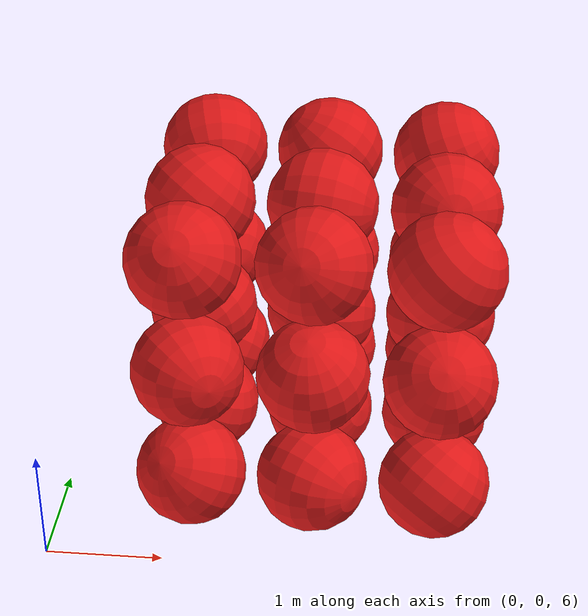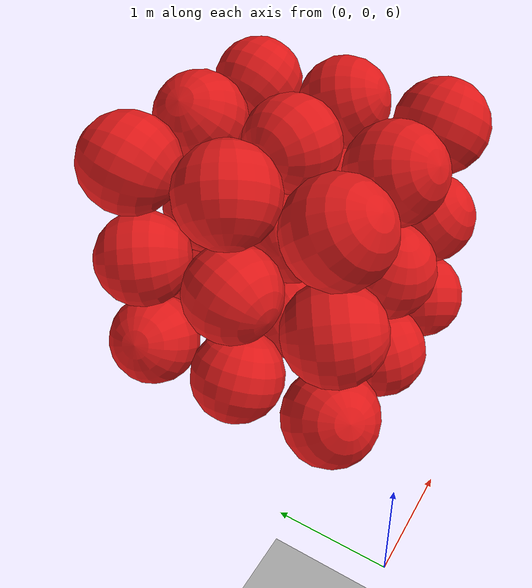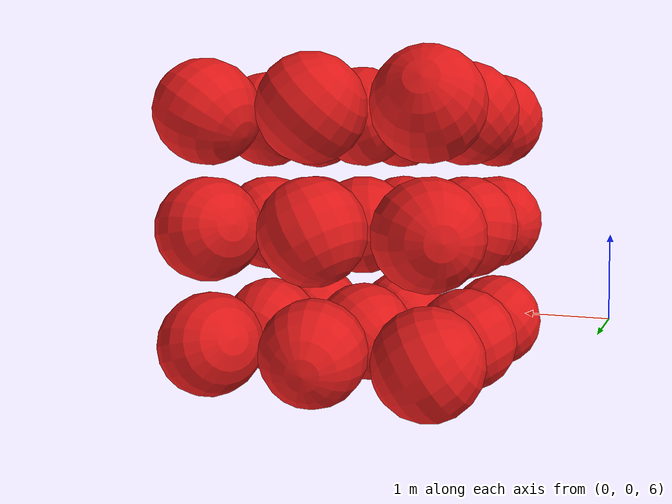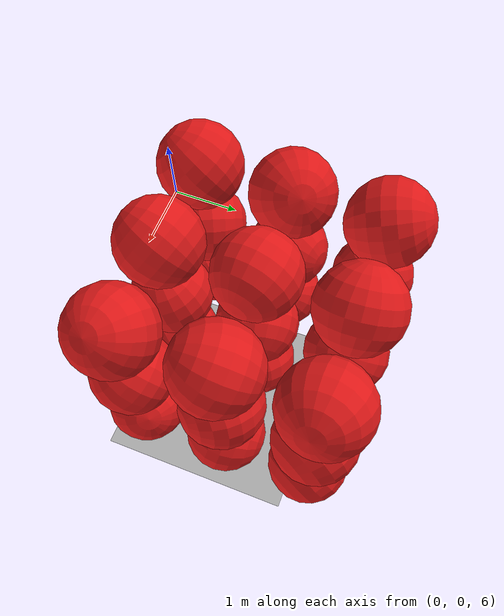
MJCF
<mujoco model="Humanoid and 100 objects">
    <compiler angle="degree"/>

    <option timestep="0.01" iterations="50" solver="PGS" jacobian="sparse" cone="elliptic" tolerance="1e-10"/>

    <size njmax="5000" nconmax="2000" nstack="1000000000"/>

    <default>
        <geom solimp=".9 .9 .01"/>

        <default class="object5">
			<geom type="sphere" material="geom" rgba=".9 .1 .1 1" size="0.500000"/>
        </default>
    </default>

    <asset>
        <texture type="skybox" builtin="gradient" width="128" height="128" rgb1=".4 .6 .8" rgb2="0 0 0"/>
        <texture name="texgeom" type="cube" builtin="flat" mark="cross" width="128" height="128"
            rgb1="0.6 0.6 0.6" rgb2="0.6 0.6 0.6" markrgb="1 1 1"/>
        <texture name="texplane" type="2d" builtin="checker" rgb1=".4 .4 .4" rgb2=".6 .6 .6"
            width="512" height="512"/>
        <material name='geom' texture="texgeom" texuniform="true"/>
        <material name='MatPlane' reflectance='0.3' texture="texplane" texrepeat="1 1" texuniform="true"/>
    </asset>

    <visual>
        <quality shadowsize="4096" offsamples="8"/>
        <map znear="0.1" force="0.05"/>
    </visual>

    <statistic extent="4"/>

    <worldbody>
        <light directional="true" diffuse=".8 .8 .8" pos="0 0 10" dir="0 0 -10"/>

        <geom pos="0 0 0" type="plane" size="3 3 .5" rgba=".7 .7 .7 1" material="MatPlane"/>
		<body pos="1.100699 1.100891 6.100959" quat="0.084177 -0.644268 -0.625246 -0.432319"> <freejoint/> <geom class="object5"/> </body>
		<body pos="1.100841 1.100254 7.200814" quat="-0.424750 0.710906 -0.248443 -0.502470"> <freejoint/> <geom class="object5"/> </body>
		<body pos="1.100251 1.100616 8.300473" quat="-0.394776 0.880428 0.226912 0.132328"> <freejoint/> <geom class="object5"/> </body>
		<body pos="1.100917 2.200286 6.100757" quat="0.494597 -0.233048 0.132205 -0.826792"> <freejoint/> <geom class="object5"/> </body>
		<body pos="1.100054 2.200531 7.200779" quat="0.754364 -0.643269 0.119624 -0.053203"> <freejoint/> <geom class="object5"/> </body>
		<body pos="1.100012 2.200337 8.300162" quat="0.607259 -0.389560 0.058878 -0.689937"> <freejoint/> <geom class="object5"/> </body>
		<body pos="1.100602 3.300263 6.100654" quat="0.362116 0.474909 -0.094653 -0.796476"> <freejoint/> <geom class="object5"/> </body>
		<body pos="1.100229 3.300913 7.200152" quat="0.446823 0.052583 0.680395 -0.578487"> <freejoint/> <geom class="object5"/> </body>
		<body pos="1.100443 3.300107 8.300962" quat="-0.663395 0.368161 0.424933 0.493757"> <freejoint/> <geom class="object5"/> </body>
		<body pos="2.200084 1.100400 6.100260" quat="0.496951 -0.113587 0.680083 -0.526901"> <freejoint/> <geom class="object5"/> </body>
		<body pos="2.200264 1.100146 7.200136" quat="0.709034 0.153031 0.095731 -0.681680"> <freejoint/> <geom class="object5"/> </body>
		<body pos="2.200853 1.100622 8.300351" quat="0.026122 -0.193591 -0.836006 -0.512770"> <freejoint/> <geom class="object5"/> </body>
		<body pos="2.200123 2.200184 6.100240" quat="-0.109614 -0.596669 0.533564 0.589305"> <freejoint/> <geom class="object5"/> </body>
		<body pos="2.200491 2.200489 7.200338" quat="0.627198 -0.204993 -0.609550 0.439375"> <freejoint/> <geom class="object5"/> </body>
		<body pos="2.200390 2.200242 8.300404" quat="-0.481724 -0.439324 0.527689 0.544501"> <freejoint/> <geom class="object5"/> </body>
		<body pos="2.200575 3.300060 6.100235" quat="-0.194772 0.426034 -0.642773 -0.606137"> <freejoint/> <geom class="object5"/> </body>
		<body pos="2.200169 3.300649 7.200732" quat="0.566862 -0.188293 0.180361 -0.781463"> <freejoint/> <geom class="object5"/> </body>
		<body pos="2.200745 3.300189 8.300687" quat="-0.687745 -0.285789 0.272975 0.608947"> <freejoint/> <geom class="object5"/> </body>
		<body pos="3.300081 1.100929 6.100776" quat="-0.062529 -0.303647 -0.251927 -0.916745"> <freejoint/> <geom class="object5"/> </body>
		<body pos="3.300509 1.100511 7.200818" quat="0.629196 0.307987 -0.259058 0.664940"> <freejoint/> <geom class="object5"/> </body>
		<body pos="3.300533 1.100351 8.300939" quat="0.921535 0.122946 0.300219 0.213369"> <freejoint/> <geom class="object5"/> </body>
		<body pos="3.300208 2.200301 6.100471" quat="-0.449516 0.574269 -0.509099 -0.457132"> <freejoint/> <geom class="object5"/> </body>
		<body pos="3.300171 2.200228 7.200436" quat="-0.334374 0.749439 -0.123542 -0.557918"> <freejoint/> <geom class="object5"/> </body>
		<body pos="3.300905 2.200980 8.300439" quat="-0.816036 -0.507683 -0.191544 0.199132"> <freejoint/> <geom class="object5"/> </body>
		<body pos="3.300262 3.300603 6.100711" quat="-0.509741 -0.700865 -0.372476 -0.331986"> <freejoint/> <geom class="object5"/> </body>
		<body pos="3.300424 3.300508 7.200086" quat="-0.319522 0.404942 -0.633319 0.576918"> <freejoint/> <geom class="object5"/> </body>
		<body pos="3.300730 3.300489 8.300579" quat="-0.490092 -0.076767 0.863882 0.087315"> <freejoint/> <geom class="object5"/> </body>

    </worldbody>
</mujoco>
